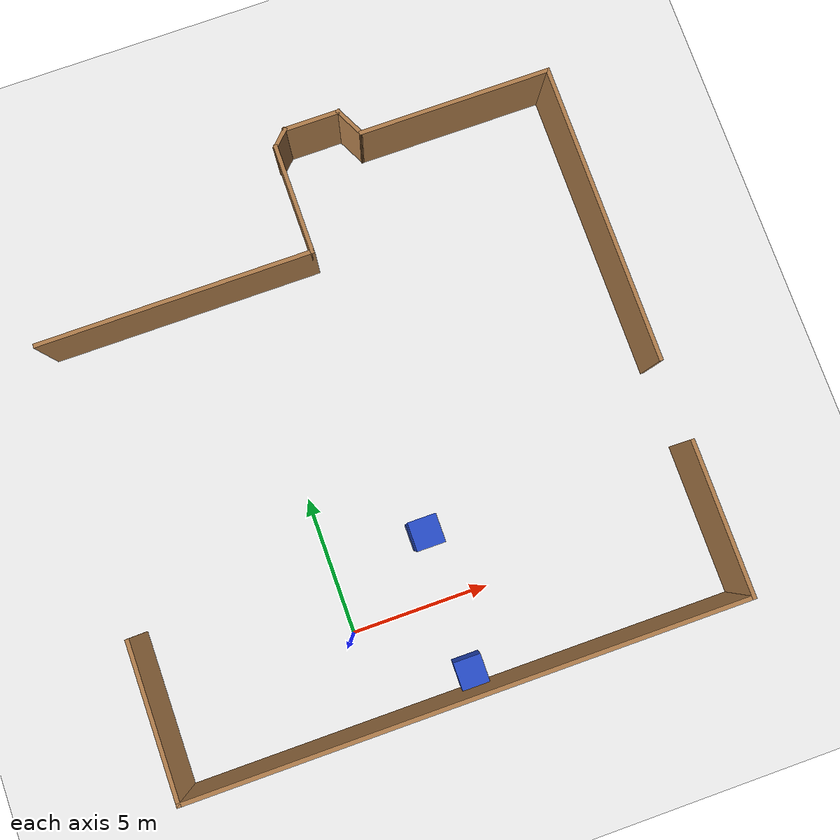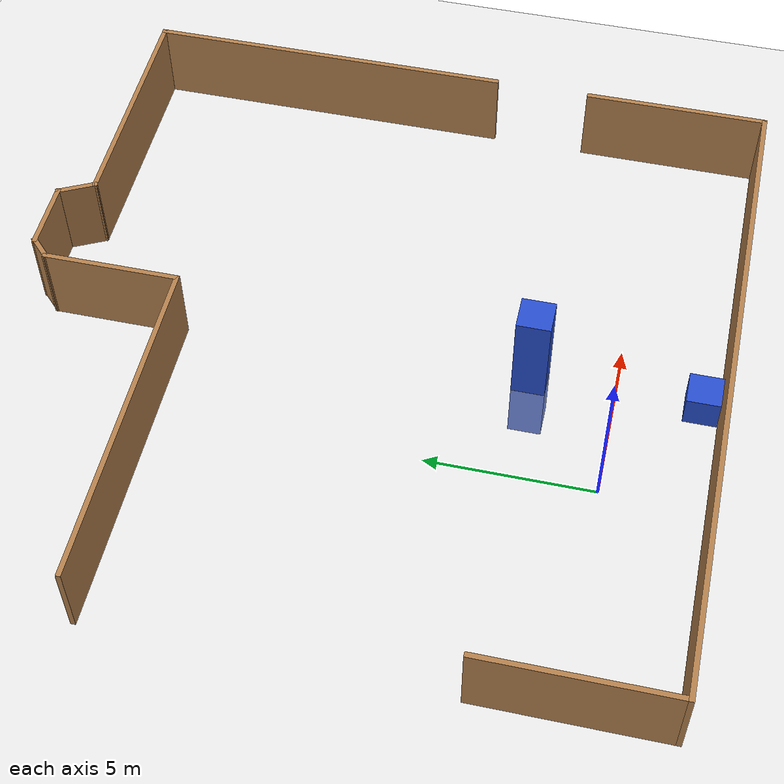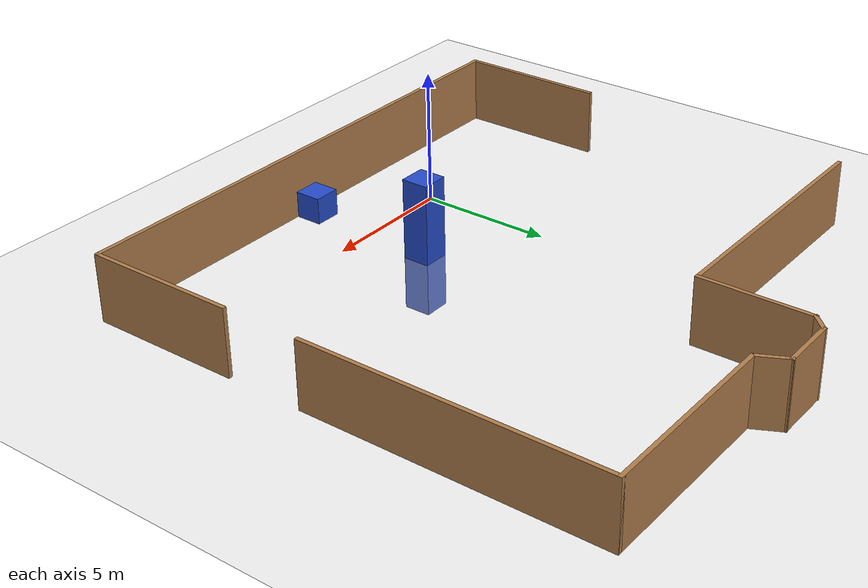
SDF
<sdf version="1.7">
 <world name="default">
  <light name="sun" type="directional">
   <pose>0 0 10 0 -0 0</pose>
   <diffuse>0.8 0.8 0.8 1</diffuse>
   <specular>0.2 0.2 0.2 1</specular>
   <attenuation>
    <range>1000</range>
    <constant>0.9</constant>
    <linear>0.01</linear>
    <quadratic>0.001</quadratic>
   </attenuation>
   <direction>-0.5 0.1 -0.9</direction>
   <spot><inner_angle>0</inner_angle><outer_angle>0</outer_angle><falloff>0</falloff></spot>
  </light>
  <model name="ground_plane">
   <static>1</static>
   <link name="link">
    <collision name="collision">
     <geometry><plane><normal>0 0 1</normal><size>100 100</size></plane></geometry>
     <surface>
      <contact><collide_bitmask>65535</collide_bitmask></contact>
      <friction><ode><mu>100</mu><mu2>50</mu2></ode></friction>
     </surface>
    </collision>
    <visual name="visual">
     <cast_shadows>0</cast_shadows>
     <geometry><plane><normal>0 0 1</normal><size>100 100</size></plane></geometry>
     <material>
      <script><uri>file://media/materials/scripts/gazebo.material</uri><name>Gazebo/Grey</name></script>
     </material>
    </visual>
   </link>
  </model>
  <gravity>0 0 -9.8</gravity>
  <magnetic_field>6e-06 2.3e-05 -4.2e-05</magnetic_field>
  <atmosphere type="adiabatic"/>
  <physics type="ode">
   <max_step_size>0.001</max_step_size>
   <real_time_factor>1</real_time_factor>
   <real_time_update_rate>1000</real_time_update_rate>
  </physics>
  <scene><ambient>0.4 0.4 0.4 1</ambient><background>0.7 0.7 0.7 1</background><shadows>1</shadows></scene>
  <spherical_coordinates>
   <surface_model>EARTH_WGS84</surface_model>
   <latitude_deg>0</latitude_deg>
   <longitude_deg>0</longitude_deg>
   <elevation>0</elevation>
   <heading_deg>0</heading_deg>
  </spherical_coordinates>
  <model name="B1">
   <pose>3.03981 7.16893 0 0 -0 0</pose>
   <link name="Wall_13">
    <collision name="Wall_13_Collision">
     <geometry><box><size>10.15 0.15 2.5</size></box></geometry>
     <pose>0 0 1.25 0 -0 0</pose>
    </collision>
    <visual name="Wall_13_Visual">
     <pose>0 0 1.25 0 -0 0</pose>
     <geometry><box><size>10.15 0.15 2.5</size></box></geometry>
     <material>
      <script><uri>file://media/materials/scripts/gazebo.material</uri><name>Gazebo/Wood</name></script>
      <ambient>1 1 1 1</ambient>
     </material>
     <meta><layer>0</layer></meta>
    </visual>
    <pose>-5 5.73447 0 0 -0 0</pose>
   </link>
   <link name="Wall_26">
    <collision name="Wall_26_Collision">
     <geometry><box><size>20.15 0.15 2.5</size></box></geometry>
     <pose>0 0 1.25 0 -0 0</pose>
    </collision>
    <visual name="Wall_26_Visual">
     <pose>0 0 1.25 0 -0 0</pose>
     <geometry><box><size>20.15 0.15 2.5</size></box></geometry>
     <material>
      <script><uri>file://media/materials/scripts/gazebo.material</uri><name>Gazebo/Wood</name></script>
      <ambient>0.921569 0.807843 0.615686 1</ambient>
     </material>
     <meta><layer>0</layer></meta>
    </visual>
    <pose>-0 -10.2655 0 0 -0 0</pose>
   </link>
   <link name="Wall_28">
    <collision name="Wall_28_Collision">
     <geometry><box><size>5.65 0.15 2.5</size></box></geometry>
     <pose>0 0 1.25 0 -0 0</pose>
    </collision>
    <visual name="Wall_28_Visual">
     <pose>0 0 1.25 0 -0 0</pose>
     <geometry><box><size>5.65 0.15 2.5</size></box></geometry>
     <material>
      <script><uri>file://media/materials/scripts/gazebo.material</uri><name>Gazebo/Wood</name></script>
      <ambient>1 1 1 1</ambient>
     </material>
     <meta><layer>0</layer></meta>
    </visual>
    <pose>10 -7.51553 0 0 -0 1.5708</pose>
   </link>
   <link name="Wall_30">
    <collision name="Wall_30_Collision">
     <geometry><box><size>5.65 0.15 2.5</size></box></geometry>
     <pose>0 0 1.25 0 -0 0</pose>
    </collision>
    <visual name="Wall_30_Visual">
     <pose>0 0 1.25 0 -0 0</pose>
     <geometry><box><size>5.65 0.15 2.5</size></box></geometry>
     <material>
      <script><uri>file://media/materials/scripts/gazebo.material</uri><name>Gazebo/Wood</name></script>
      <ambient>1 1 1 1</ambient>
     </material>
     <meta><layer>0</layer></meta>
    </visual>
    <pose>-10 -7.51553 0 0 -0 1.5708</pose>
   </link>
   <link name="Wall_32">
    <collision name="Wall_32_Collision">
     <geometry><box><size>4.15 0.15 2.5</size></box></geometry>
     <pose>0 0 1.25 0 -0 0</pose>
    </collision>
    <visual name="Wall_32_Visual">
     <pose>0 0 1.25 0 -0 0</pose>
     <geometry><box><size>4.15 0.15 2.5</size></box></geometry>
     <material>
      <script><uri>file://media/materials/scripts/gazebo.material</uri><name>Gazebo/Wood</name></script>
      <ambient>1 1 1 1</ambient>
     </material>
     <meta><layer>0</layer></meta>
    </visual>
    <pose>-0 7.73447 0 0 -0 1.5708</pose>
   </link>
   <link name="Wall_34">
    <collision name="Wall_34_Collision">
     <geometry><box><size>0.857107 0.15 2.5</size></box></geometry>
     <pose>0 0 1.25 0 -0 0</pose>
    </collision>
    <visual name="Wall_34_Visual">
     <pose>0 0 1.25 0 -0 0</pose>
     <geometry><box><size>0.857107 0.15 2.5</size></box></geometry>
     <material>
      <script><uri>file://media/materials/scripts/gazebo.material</uri><name>Gazebo/Wood</name></script>
      <ambient>1 1 1 1</ambient>
     </material>
     <meta><layer>0</layer></meta>
    </visual>
    <pose>0.25 9.98447 0 0 -0 0.785398</pose>
   </link>
   <link name="Wall_35">
    <collision name="Wall_35_Collision">
     <geometry><box><size>2.15 0.15 2.5</size></box></geometry>
     <pose>0 0 1.25 0 -0 0</pose>
    </collision>
    <visual name="Wall_35_Visual">
     <pose>0 0 1.25 0 -0 0</pose>
     <geometry><box><size>2.15 0.15 2.5</size></box></geometry>
     <material>
      <script><uri>file://media/materials/scripts/gazebo.material</uri><name>Gazebo/Wood</name></script>
      <ambient>1 1 1 1</ambient>
     </material>
     <meta><layer>0</layer></meta>
    </visual>
    <pose>1.5 10.2345 0 0 -0 0</pose>
   </link>
   <link name="Wall_36">
    <collision name="Wall_36_Collision">
     <geometry><box><size>1.26803 0.15 2.5</size></box></geometry>
     <pose>0 0 1.25 0 -0 0</pose>
    </collision>
    <visual name="Wall_36_Visual">
     <pose>0 0 1.25 0 -0 0</pose>
     <geometry><box><size>1.26803 0.15 2.5</size></box></geometry>
     <material>
      <script><uri>file://media/materials/scripts/gazebo.material</uri><name>Gazebo/Wood</name></script>
      <ambient>1 1 1 1</ambient>
     </material>
     <meta><layer>0</layer></meta>
    </visual>
    <pose>2.75 9.73447 0 0 -0 -1.10715</pose>
   </link>
   <link name="Wall_37">
    <collision name="Wall_37_Collision">
     <geometry><box><size>7.15 0.15 2.5</size></box></geometry>
     <pose>0 0 1.25 0 -0 0</pose>
    </collision>
    <visual name="Wall_37_Visual">
     <pose>0 0 1.25 0 -0 0</pose>
     <geometry><box><size>7.15 0.15 2.5</size></box></geometry>
     <material>
      <script><uri>file://media/materials/scripts/gazebo.material</uri><name>Gazebo/Wood</name></script>
      <ambient>1 1 1 1</ambient>
     </material>
     <meta><layer>0</layer></meta>
    </visual>
    <pose>6.5 9.23447 0 0 -0 0</pose>
   </link>
   <link name="Wall_40">
    <collision name="Wall_40_Collision">
     <geometry><box><size>11.15 0.15 2.5</size></box></geometry>
     <pose>0 0 1.25 0 -0 0</pose>
    </collision>
    <visual name="Wall_40_Visual">
     <pose>0 0 1.25 0 -0 0</pose>
     <geometry><box><size>11.15 0.15 2.5</size></box></geometry>
     <material>
      <script><uri>file://media/materials/scripts/gazebo.material</uri><name>Gazebo/Wood</name></script>
      <ambient>1 1 1 1</ambient>
     </material>
     <meta><layer>0</layer></meta>
    </visual>
    <pose>10 3.73447 0 0 -0 -1.5708</pose>
   </link>
   <static>1</static>
  </model>
  <model name="unit_box">
   <static>true</static>
   <link name="link">
    <inertial>
     <mass>1</mass>
     <inertia>
      <ixx>0.166667</ixx>
      <ixy>0</ixy>
      <ixz>0</ixz>
      <iyy>0.166667</iyy>
      <iyz>0</iyz>
      <izz>0.166667</izz>
     </inertia>
    </inertial>
    <visual name="visual">
     <geometry><box><size>1 1 1</size></box></geometry>
     <material>
      <script><name>Gazebo/Blue</name><uri>file://media/materials/scripts/gazebo.material</uri></script>
      <shader type="pixel"><normal_map>__default__</normal_map></shader>
      <ambient>0.3 0.3 0.3 1</ambient>
      <diffuse>0.7 0.7 0.7 1</diffuse>
      <specular>0.01 0.01 0.01 1</specular>
      <emissive>0 0 0 1</emissive>
     </material>
    </visual>
    <collision name="collision">
     <geometry><box><size>1 1 1</size></box></geometry>
     <surface>
      <friction>
       <ode><mu>1</mu><mu2>1</mu2><fdir1>0 0 0</fdir1><slip1>0</slip1><slip2>0</slip2></ode>
       <torsional>
        <coefficient>1</coefficient>
        <patch_radius>0</patch_radius>
        <surface_radius>0</surface_radius>
        <use_patch_radius>1</use_patch_radius>
        <ode><slip>0</slip></ode>
       </torsional>
      </friction>
      <bounce><restitution_coefficient>0</restitution_coefficient><threshold>1e+06</threshold></bounce>
      <contact>
       <collide_without_contact>0</collide_without_contact>
       <collide_without_contact_bitmask>1</collide_without_contact_bitmask>
       <collide_bitmask>1</collide_bitmask>
       <ode>
        <soft_cfm>0</soft_cfm>
        <soft_erp>0.2</soft_erp>
        <kp>1e+13</kp>
        <kd>1</kd>
        <max_vel>0.01</max_vel>
        <min_depth>0</min_depth>
       </ode>
       <bullet>
        <split_impulse>1</split_impulse>
        <split_impulse_penetration_threshold>-0.01</split_impulse_penetration_threshold>
        <soft_cfm>0</soft_cfm>
        <soft_erp>0.2</soft_erp>
        <kp>1e+13</kp>
        <kd>1</kd>
       </bullet>
      </contact>
     </surface>
    </collision>
   </link>
   <static>0</static>
   <pose>3.44048 -2.5099 0.499995 0 -1e-05 0</pose>
  </model>
  <model name="pillar">
   <static>true</static>
   <link name="link">
    <inertial>
     <mass>1</mass>
     <inertia>
      <ixx>0.166667</ixx>
      <ixy>0</ixy>
      <ixz>0</ixz>
      <iyy>0.166667</iyy>
      <iyz>0</iyz>
      <izz>0.166667</izz>
     </inertia>
    </inertial>
    <pose>1.01667 -0 0 0 -0 0</pose>
    <visual name="visual">
     <geometry><box><size>1 1 5</size></box></geometry>
     <material>
      <script><name>Gazebo/Blue</name><uri>file://media/materials/scripts/gazebo.material</uri></script>
      <shader type="pixel"><normal_map>__default__</normal_map></shader>
      <ambient>0.2 0.3 0.8 1</ambient>
      <diffuse>0.7 0.7 0.7 1</diffuse>
      <specular>0.01 0.01 0.01 1</specular>
      <emissive>0 0 0 1</emissive>
     </material>
    </visual>
    <collision name="collision">
     <geometry><box><size>1 1 1</size></box></geometry>
     <surface>
      <friction>
       <ode><mu>1</mu><mu2>1</mu2><fdir1>0 0 0</fdir1><slip1>0</slip1><slip2>0</slip2></ode>
       <torsional>
        <coefficient>1</coefficient>
        <patch_radius>0</patch_radius>
        <surface_radius>0</surface_radius>
        <use_patch_radius>1</use_patch_radius>
        <ode><slip>0</slip></ode>
       </torsional>
      </friction>
      <bounce><restitution_coefficient>0</restitution_coefficient><threshold>1e+06</threshold></bounce>
      <contact>
       <collide_without_contact>0</collide_without_contact>
       <collide_without_contact_bitmask>1</collide_without_contact_bitmask>
       <collide_bitmask>1</collide_bitmask>
       <ode>
        <soft_cfm>0</soft_cfm>
        <soft_erp>0.2</soft_erp>
        <kp>1e+13</kp>
        <kd>1</kd>
        <max_vel>0.01</max_vel>
        <min_depth>0</min_depth>
       </ode>
       <bullet>
        <split_impulse>1</split_impulse>
        <split_impulse_penetration_threshold>-0.01</split_impulse_penetration_threshold>
        <soft_cfm>0</soft_cfm>
        <soft_erp>0.2</soft_erp>
        <kp>1e+13</kp>
        <kd>1</kd>
       </bullet>
      </contact>
     </surface>
    </collision>
   </link>
   <static>0</static>
   <pose>2.4874 2.50424 0.5 0 -0 0</pose>
  </model>
  <plugin name="gazebo_occupancy_map" filename="libgazebo_2Dmap_plugin.so">
   <map_resolution>0.1</map_resolution>
   <map_height>0.4310286998878532</map_height>
   <map_size_x>40</map_size_x>
   <map_size_y>40</map_size_y>
   <init_robot_x>0</init_robot_x>
   <init_robot_y>0</init_robot_y>
  </plugin>
 </world>
</sdf>
